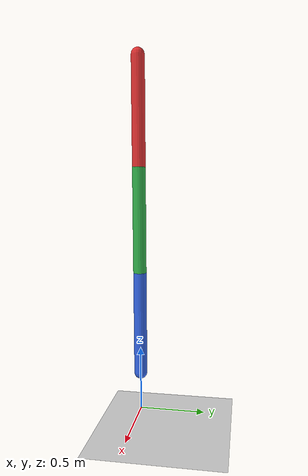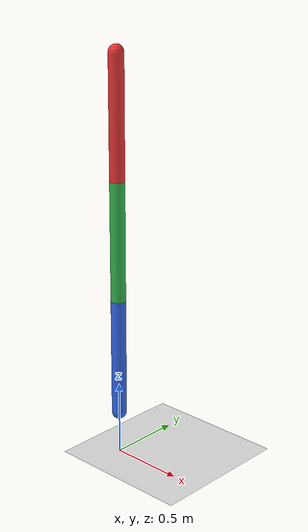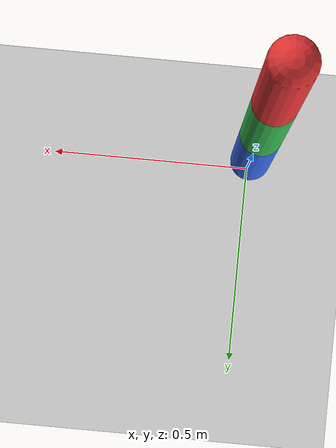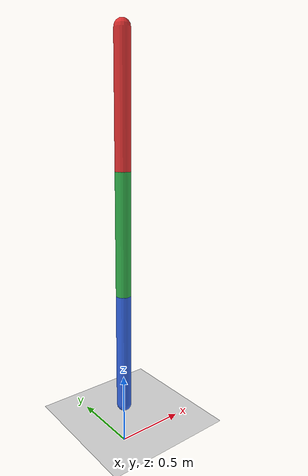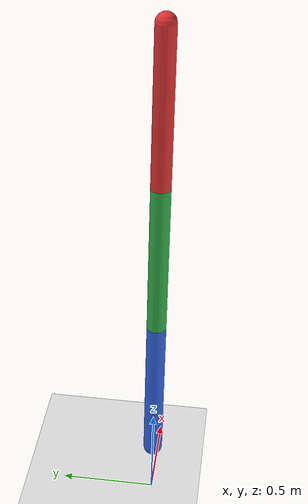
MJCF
<mujoco model="triple pendulum">
    <option
        timestep="0.01"
        gravity="0 0 -9.81"
        integrator="RK4"
    />

    <worldbody>
        <light pos="0 0 4"/>

        <geom
            name="floor"
            type="plane"
            size="4 4 0.1"
            rgba="0.9 0.9 0.9 1"
        />

        <body name="link1" pos="0 0 2.7">
            <joint
                name="joint1"
                type="hinge"
                axis="0 1 0"
                damping="0.05"
            />

            <geom
                name="rod1"
                type="capsule"
                fromto="0 0 0 0 0 -0.8"
                size="0.05"
                mass = "0.2"
                rgba="0.9 0.2 0.2 1"
            />

            <body name="link2" pos="0 0 -0.8">
                <joint
                    name="joint2"
                    type="hinge"
                    axis="0 1 0"
                    damping="0.05"
                />

                <geom
                    name="rod2"
                    type="capsule"
                    fromto="0 0 0 0 0 -0.8"
                    size="0.05"
                    mass = "0.2"
                    rgba="0.2 0.7 0.3 1"
                />

                <body name="link3" pos="0 0 -0.8">
                    <joint
                        name="joint3"
                        type="hinge"
                        axis="0 1 0"
                        damping="0.05"
                    />

                    <geom
                        name="rod3"
                        type="capsule"
                        fromto="0 0 0 0 0 -0.8"
                        size="0.05"
                        mass = "0.2"
                        rgba="0.2 0.4 0.9 1"
                    />
                </body>
            </body>
        </body>
    </worldbody>

    <actuator>
        <motor
            name="motor1"
            joint="joint1"
            ctrllimited="true"
            ctrlrange="-10 10"
        />

        <motor
            name="motor2"
            joint="joint2"
            ctrllimited="true"
            ctrlrange="-10 10"
        />

        <motor
            name="motor3"
            joint="joint3"
            ctrllimited="true"
            ctrlrange="-10 10"
        />
    </actuator>
</mujoco>
